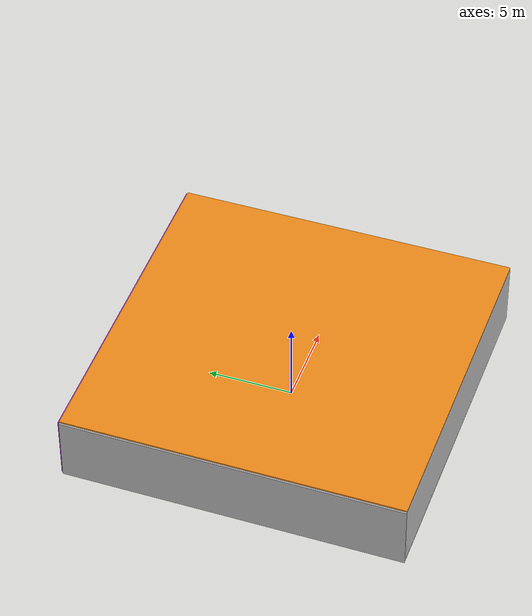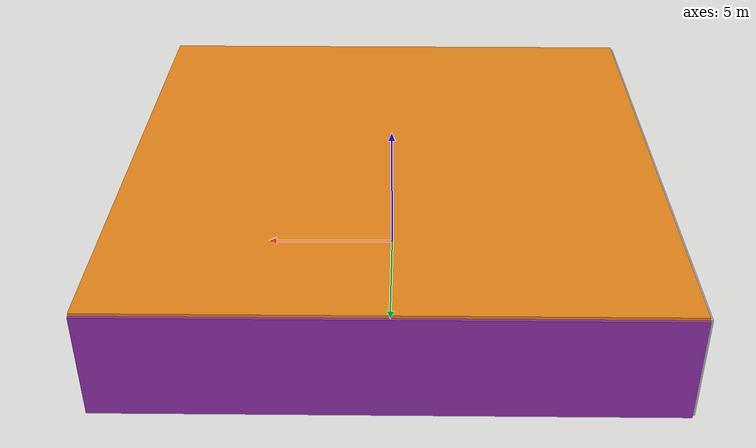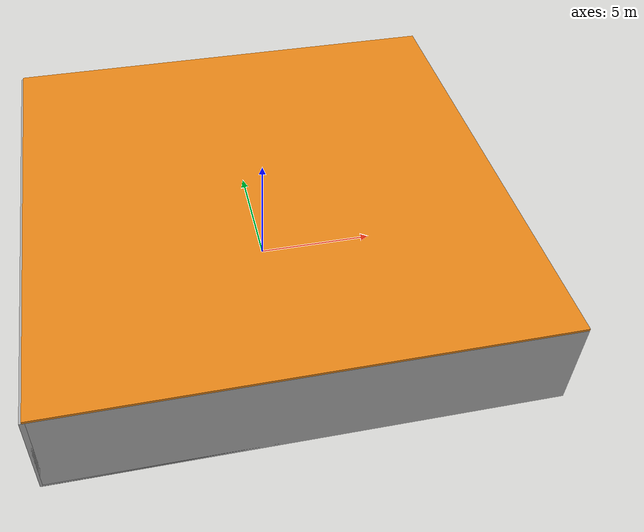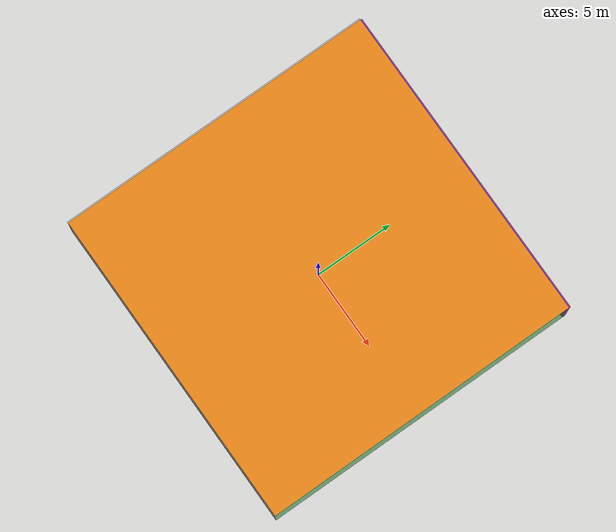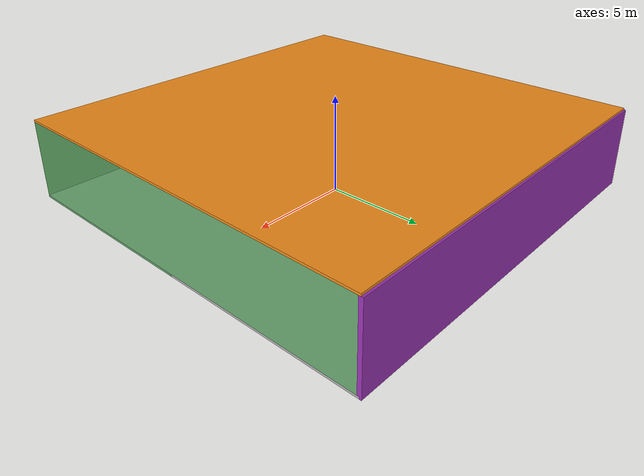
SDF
<sdf version="1.4">
 <world name="default">
  <physics type="ode">
   <max_step_size>0.001</max_step_size>
   <real_time_factor>1</real_time_factor>
   <real_time_update_rate>1000</real_time_update_rate>
   <gravity>0 0 -9.8</gravity>
  </physics>
  <scene><ambient>0.4 0.4 0.4 1</ambient><background>0.7 0.7 0.7 1</background><shadows>1</shadows></scene>
  <model name="Surrounding">
   <static>1</static>
   <link name="Ceiling">
    <collision name="Ceiling_Collision"><geometry><box><size>20 20 0.1</size></box></geometry></collision>
    <visual name="Ceiling_Visual">
     <geometry><box><size>20 20 0.1</size></box></geometry>
     <material>
      <script><uri>file://media/materials/scripts/gazebo.material</uri><name>Gazebo/Orange</name></script>
     </material>
    </visual>
    <pose>0 0 4.05 0 0 0</pose>
   </link>
   <link name="Wall_South">
    <collision name="Wall_South_Collision">
     <geometry><box><size>20 0 4</size></box></geometry>
     <pose>0 0 2 0 -0 0</pose>
    </collision>
    <visual name="Wall_South_Visual">
     <pose>0 0 2 0 -0 0</pose>
     <geometry><box><size>20 0 4</size></box></geometry>
     <material>
      <script><uri>file://media/materials/scripts/gazebo.material</uri><name>Gazebo/LightOn</name></script>
     </material>
    </visual>
    <velocity_decay><linear>0</linear><angular>0</angular></velocity_decay>
    <pose>0 -10 0 0 -0 0</pose>
   </link>
   <link name="Wall_East">
    <collision name="Wall_21_Collision">
     <geometry><box><size>20 0 4</size></box></geometry>
     <pose>0 0 2 0 -0 0</pose>
    </collision>
    <visual name="Wall_21_Visual">
     <pose>0 0 2 0 -0 0</pose>
     <geometry><box><size>20 0 4</size></box></geometry>
     <material>
      <script><uri>file://media/materials/scripts/gazebo.material</uri><name>Gazebo/GreenTransparent</name></script>
     </material>
    </visual>
    <velocity_decay><linear>0</linear><angular>0</angular></velocity_decay>
    <pose>10 0 0 0 -0 1.5708</pose>
   </link>
   <link name="Wall_North">
    <collision name="Wall_22_Collision">
     <geometry><box><size>20 0.2 4</size></box></geometry>
     <pose>0 0 2 0 -0 0</pose>
    </collision>
    <visual name="Wall_22_Visual">
     <pose>0 0 2 0 -0 0</pose>
     <geometry><box><size>20 0.2 4</size></box></geometry>
     <material>
      <script><uri>file://media/materials/scripts/gazebo.material</uri><name>Gazebo/PurpleGlow</name></script>
     </material>
    </visual>
    <velocity_decay><linear>0</linear><angular>0</angular></velocity_decay>
    <pose>0 10 0 0 -0 0</pose>
   </link>
   <link name="Wall_West">
    <collision name="Wall_23_Collision">
     <geometry><box><size>20 0.2 4</size></box></geometry>
     <pose>0 0 2 0 -0 0</pose>
    </collision>
    <visual name="Wall_23_Visual">
     <pose>0 0 2 0 -0 0</pose>
     <geometry><box><size>20 0.2 4</size></box></geometry>
     <material>
      <script><uri>file://media/materials/scripts/gazebo.material</uri><name>Gazebo/JointAnchor</name></script>
     </material>
    </visual>
    <velocity_decay><linear>0</linear><angular>0</angular></velocity_decay>
    <pose>-10 0 0 0 0 -1.5708</pose>
   </link>
   <link name="Ground_link">
    <collision name="collision">
     <pose>0 0 .05 0 -0 0</pose>
     <geometry><box><size>20 20 0.1</size></box></geometry>
    </collision>
    <visual name="visual">
     <pose>0 0 .05 0 -0 0</pose>
     <geometry><box><size>20 20 0.1</size></box></geometry>
     <material>
      <script><uri>file://media/materials/scripts/gazebo.material</uri><name>Gazebo/Pioneer2Body</name></script>
     </material>
    </visual>
   </link>
   <static>1</static>
  </model>
  <spherical_coordinates>
   <surface_model>EARTH_WGS84</surface_model>
   <latitude_deg>0</latitude_deg>
   <longitude_deg>0</longitude_deg>
   <elevation>0</elevation>
   <heading_deg>0</heading_deg>
  </spherical_coordinates>
  <light name="lightball_0" type="diffuse">
   <diffuse>0.8 0.8 0.8 1</diffuse>
   <specular>0.2 0.2 0.2 1</specular>
   <attenuation>
    <range>100</range>
    <constant>0.7</constant>
    <linear>0.01</linear>
    <quadratic>0.001</quadratic>
   </attenuation>
   <direction>-0.5 0.1 -0.9</direction>
   <pose>-6.9133809468 -4.9905610805 1.58254588103 0 0 0</pose>
  </light>
  <light name="lightball_1" type="diffuse">
   <diffuse>0.8 0.8 0.8 1</diffuse>
   <specular>0.2 0.2 0.2 1</specular>
   <attenuation>
    <range>100</range>
    <constant>0.7</constant>
    <linear>0.01</linear>
    <quadratic>0.001</quadratic>
   </attenuation>
   <direction>-0.5 0.1 -0.9</direction>
   <pose>2.52176094526 7.57111679758 3.44630338513 0 0 0</pose>
  </light>
  <light name="lightball_2" type="diffuse">
   <diffuse>0.8 0.8 0.8 1</diffuse>
   <specular>0.2 0.2 0.2 1</specular>
   <attenuation>
    <range>100</range>
    <constant>0.7</constant>
    <linear>0.01</linear>
    <quadratic>0.001</quadratic>
   </attenuation>
   <direction>-0.5 0.1 -0.9</direction>
   <pose>-6.80459452577 -0.304873801495 3.32246097551 0 0 0</pose>
  </light>
  <light name="lightball_3" type="diffuse">
   <diffuse>0.8 0.8 0.8 1</diffuse>
   <specular>0.2 0.2 0.2 1</specular>
   <attenuation>
    <range>100</range>
    <constant>0.7</constant>
    <linear>0.01</linear>
    <quadratic>0.001</quadratic>
   </attenuation>
   <direction>-0.5 0.1 -0.9</direction>
   <pose>-9.68268408879 2.64420951922 1.97315138456 0 0 0</pose>
  </light>
  <light name="lightball_4" type="diffuse">
   <diffuse>0.8 0.8 0.8 1</diffuse>
   <specular>0.2 0.2 0.2 1</specular>
   <attenuation>
    <range>100</range>
    <constant>0.7</constant>
    <linear>0.01</linear>
    <quadratic>0.001</quadratic>
   </attenuation>
   <direction>-0.5 0.1 -0.9</direction>
   <pose>7.59142261083 1.90288799244 2.62017386108 0 0 0</pose>
  </light>
  <light name="lightball_5" type="diffuse">
   <diffuse>0.8 0.8 0.8 1</diffuse>
   <specular>0.2 0.2 0.2 1</specular>
   <attenuation>
    <range>100</range>
    <constant>0.7</constant>
    <linear>0.01</linear>
    <quadratic>0.001</quadratic>
   </attenuation>
   <direction>-0.5 0.1 -0.9</direction>
   <pose>1.89692709071 2.51036507008 2.19629944385 0 0 0</pose>
  </light>
  <light name="lightball_6" type="diffuse">
   <diffuse>0.8 0.8 0.8 1</diffuse>
   <specular>0.2 0.2 0.2 1</specular>
   <attenuation>
    <range>100</range>
    <constant>0.7</constant>
    <linear>0.01</linear>
    <quadratic>0.001</quadratic>
   </attenuation>
   <direction>-0.5 0.1 -0.9</direction>
   <pose>-1.16746848759 -5.55115187488 0.97343840151 0 0 0</pose>
  </light>
  <light name="lightball_7" type="diffuse">
   <diffuse>0.8 0.8 0.8 1</diffuse>
   <specular>0.2 0.2 0.2 1</specular>
   <attenuation>
    <range>100</range>
    <constant>0.7</constant>
    <linear>0.01</linear>
    <quadratic>0.001</quadratic>
   </attenuation>
   <direction>-0.5 0.1 -0.9</direction>
   <pose>-9.2204186031 -8.739580974 1.81809345716 0 0 0</pose>
  </light>
  <light name="lightball_8" type="diffuse">
   <diffuse>0.8 0.8 0.8 1</diffuse>
   <specular>0.2 0.2 0.2 1</specular>
   <attenuation>
    <range>100</range>
    <constant>0.7</constant>
    <linear>0.01</linear>
    <quadratic>0.001</quadratic>
   </attenuation>
   <direction>-0.5 0.1 -0.9</direction>
   <pose>6.13521674637 5.80336315194 2.21116012086 0 0 0</pose>
  </light>
  <light name="lightball_9" type="diffuse">
   <diffuse>0.8 0.8 0.8 1</diffuse>
   <specular>0.2 0.2 0.2 1</specular>
   <attenuation>
    <range>100</range>
    <constant>0.7</constant>
    <linear>0.01</linear>
    <quadratic>0.001</quadratic>
   </attenuation>
   <direction>-0.5 0.1 -0.9</direction>
   <pose>-5.61547930845 4.12627536279 1.25264043513 0 0 0</pose>
  </light>
  <light name="lightball_10" type="diffuse">
   <diffuse>0.8 0.8 0.8 1</diffuse>
   <specular>0.2 0.2 0.2 1</specular>
   <attenuation>
    <range>100</range>
    <constant>0.7</constant>
    <linear>0.01</linear>
    <quadratic>0.001</quadratic>
   </attenuation>
   <direction>-0.5 0.1 -0.9</direction>
   <pose>-4.0140695798 -3.14512297594 1.19957359413 0 0 0</pose>
  </light>
  <include>
   <uri>model://robocup_3Dsim_goal</uri>
   <pose>-7.7727551913 4.22484507237 0 0 0 1.33879294425</pose>
  </include>
  <include>
   <uri>model://robocup_3Dsim_goal</uri>
   <pose>-1.5631478314 -3.9161483412 0 0 0 0.311571333374</pose>
  </include>
  <include><uri>model://table</uri><pose>2.14069052605 6.86757446983 0 0 0 3.04843738466</pose></include>
  <include><uri>model://cabinet</uri><pose>5.05736892393 -5.20265459068 0 0 0 2.03945390812</pose></include>
  <include>
   <uri>model://textured_shapes</uri>
   <pose>4.7867294568 -0.87298418695 0 0 0 0.0579271799241</pose>
  </include>
 </world>
</sdf>

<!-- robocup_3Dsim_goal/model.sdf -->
<sdf version="1.5">
  <model name="robocup_3d_goal">
    <static>true</static>
    <link name="left_post">
      <pose>0 1.05 0.45 0 0 0</pose>
      <collision name="collision">
        <geometry>
          <cylinder>
            <radius>0.05</radius>
            <length>0.9</length>
          </cylinder>
        </geometry>
      </collision>
      <visual name="visual">
        <geometry>
          <cylinder>
            <radius>0.05</radius>
            <length>0.9</length>
          </cylinder>
        </geometry>
        <material>
          <script>
            <uri>file://media/materials/scripts/gazebo.material</uri>
            <name>Gazebo/ZincYellow</name>
          </script>
        </material>
      </visual>
    </link>
    <link name="left_support_horiz_lower">
      <pose>0.30 1.05 0.01 0 0 0</pose>
      <collision name="collision">
        <geometry>
          <box>
            <size>0.50 0.02 0.02</size>
          </box>
        </geometry>
      </collision>
      <visual name="visual">
        <geometry>
          <box>
            <size>0.50 0.02 0.02</size>
          </box>
        </geometry>
        <material>
          <script>
            <uri>file://media/materials/scripts/gazebo.material</uri>
            <name>Gazebo/White</name>
          </script>
        </material>
      </visual>
    </link>
    <link name="left_support_horiz_upper">
      <pose>0.30 1.05 0.79 0 0 0</pose>
      <collision name="collision">
        <geometry>
          <box>
            <size>0.50 0.02 0.02</size>
          </box>
        </geometry>
      </collision>
      <visual name="visual">
        <geometry>
          <box>
            <size>0.50 0.02 0.02</size>
          </box>
        </geometry>
        <material>
          <script>
            <uri>file://media/materials/scripts/gazebo.material</uri>
            <name>Gazebo/White</name>
          </script>
        </material>
      </visual>
    </link>
    <link name="left_support_vertical">
      <pose>0.56 1.05 0.4 0 1.5708 0</pose>
      <collision name="collision">
        <geometry>
          <box>
            <size>0.80 0.02 0.02</size>
          </box>
        </geometry>
      </collision>
      <visual name="visual">
        <geometry>
          <box>
            <size>0.80 0.02 0.02</size>
          </box>
        </geometry>
        <material>
          <script>
            <uri>file://media/materials/scripts/gazebo.material</uri>
            <name>Gazebo/White</name>
          </script>
        </material>
      </visual>
    </link>
    <link name="right_support_horiz_lower">
      <pose>0.30 -1.05 0.01 0 0 0</pose>
      <collision name="collision">
        <geometry>
          <box>
            <size>0.50 0.02 0.02</size>
          </box>
        </geometry>
      </collision>
      <visual name="visual">
        <geometry>
          <box>
            <size>0.50 0.02 0.02</size>
          </box>
        </geometry>
        <material>
          <script>
            <uri>file://media/materials/scripts/gazebo.material</uri>
            <name>Gazebo/White</name>
          </script>
        </material>
      </visual>
    </link>
    <link name="right_support_horiz_upper">
      <pose>0.30 -1.05 0.79 0 0 0</pose>
      <collision name="collision">
        <geometry>
          <box>
            <size>0.50 0.02 0.02</size>
          </box>
        </geometry>
      </collision>
      <visual name="visual">
        <geometry>
          <box>
            <size>0.50 0.02 0.02</size>
          </box>
        </geometry>
        <material>
          <script>
            <uri>file://media/materials/scripts/gazebo.material</uri>
            <name>Gazebo/White</name>
          </script>
        </material>
      </visual>
    </link>
    <link name="right_support_vertical">
      <pose>0.56 -1.05 0.4 0 1.5708 0</pose>
      <collision name="collision">
        <geometry>
          <box>
            <size>0.80 0.02 0.02</size>
          </box>
        </geometry>
      </collision>
      <visual name="visual">
        <geometry>
          <box>
            <size>0.80 0.02 0.02</size>
          </box>
        </geometry>
        <material>
          <script>
            <uri>file://media/materials/scripts/gazebo.material</uri>
            <name>Gazebo/White</name>
          </script>
        </material>
      </visual>
    </link>
    <link name="center_support_horiz_lower">
      <pose>0.56 0 0.01 0 1.5708 0</pose>
      <collision name="collision">
        <geometry>
          <box>
            <size>0.02 2.08 0.02</size>
          </box>
        </geometry>
      </collision>
      <visual name="visual">
        <geometry>
          <box>
            <size>0.02 2.08 0.02</size>
          </box>
        </geometry>
        <material>
          <script>
            <uri>file://media/materials/scripts/gazebo.material</uri>
            <name>Gazebo/White</name>
          </script>
        </material>
      </visual>
    </link>
    <link name="center_support_horiz_upper">
      <pose>0.56 0 0.79 0 1.5708 0</pose>
      <collision name="collision">
        <geometry>
          <box>
            <size>0.02 2.08 0.02</size>
          </box>
        </geometry>
      </collision>
      <visual name="visual">
        <geometry>
          <box>
            <size>0.02 2.08 0.02</size>
          </box>
        </geometry>
        <material>
          <script>
            <uri>file://media/materials/scripts/gazebo.material</uri>
            <name>Gazebo/White</name>
          </script>
        </material>
      </visual>
    </link>
    <link name="right_post">
      <pose>0 -1.05 0.45 0 0 0</pose>
      <collision name="collision">
        <geometry>
          <cylinder>
            <radius>0.05</radius>
            <length>0.9</length>
          </cylinder>
        </geometry>
      </collision>
      <visual name="visual">
        <geometry>
          <cylinder>
            <radius>0.05</radius>
            <length>0.9</length>
          </cylinder>
        </geometry>
        <material>
          <script>
            <uri>file://media/materials/scripts/gazebo.material</uri>
            <name>Gazebo/ZincYellow</name>
          </script>
        </material>
      </visual>
    </link>
    <link name="crossbar">
      <pose>0 0 0.85 1.57 1.57 0</pose>
      <collision name="collision">
        <geometry>
          <cylinder>
            <radius>0.05</radius>
            <length>2.0</length>
          </cylinder>
        </geometry>
      </collision>
      <visual name="visual">
        <geometry>
          <cylinder>
            <radius>0.05</radius>
            <length>2.0</length>
          </cylinder>
        </geometry>
        <material>
          <script>
            <uri>file://media/materials/scripts/gazebo.material</uri>
            <name>Gazebo/ZincYellow</name>
          </script>
        </material>
      </visual>
    </link>
    <link name="center_net">
      <pose>0.56 0 0.40 0 0 0</pose>
      <collision name="collision">
        <geometry>
          <box>
            <size>0.01 2.1 0.80</size>
          </box>
        </geometry>
      </collision>
      <visual name="visual">
        <geometry>
          <box>
            <size>0.01 2.1 0.80</size>
          </box>
        </geometry>
        <material>
          <script>
            <uri>model://../model_source/models/robocup09_spl_field/materials/scripts/</uri>
            <uri>model://../model_source/models/robocup09_spl_field/materials/textures/</uri>
            <name>RoboCup/Net</name>
          </script>
        </material>
      </visual>
    </link>
    <link name="left_net">
      <pose>0.30 1.05 0.40 0 0 0</pose>
      <collision name="collision">
        <geometry>
          <box>
            <size>0.50 0.01 0.76</size>
          </box>
        </geometry>
      </collision>
      <visual name="visual">
        <geometry>
          <box>
            <size>0.50 0.01 0.76</size>
          </box>
        </geometry>
        <material>
          <script>
            <uri>model://../model_source/models/robocup09_spl_field/materials/scripts/</uri>
            <uri>model://../model_source/models/robocup09_spl_field/materials/textures/</uri>
            <name>RoboCup/Net</name>
          </script>
        </material>
      </visual>
    </link>
    <link name="right_net">
      <pose>0.30 -1.05 0.40 0 0 0</pose>
      <collision name="collision">
        <geometry>
          <box>
            <size>0.50 0.01 0.76</size>
          </box>
        </geometry>
      </collision>
      <visual name="visual">
        <geometry>
          <box>
            <size>0.50 0.01 0.76</size>
          </box>
        </geometry>
        <material>
          <script>
            <uri>model://../model_source/models/robocup09_spl_field/materials/scripts/</uri>
            <uri>model://../model_source/models/robocup09_spl_field/materials/textures/</uri>
            <name>RoboCup/Net</name>
          </script>
        </material>
      </visual>
    </link>
  </model>
</sdf>

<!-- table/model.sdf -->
<sdf version="1.5">
  <model name="table">
    <static>true</static>
    <link name="link">
      <collision name="surface">
        <pose>0 0 1.0 0 0 0</pose>
        <geometry>
          <box>
            <size>1.5 0.8 0.03</size>
          </box>
        </geometry>
        <surface>
          <friction>
            <ode>
              <mu>0.6</mu>
              <mu2>0.6</mu2>
            </ode>
          </friction>
        </surface>
      </collision>
      <visual name="visual1">
        <pose>0 0 1.0 0 0 0</pose>
        <geometry>
          <box>
            <size>1.5 0.8 0.03</size>
          </box>
        </geometry>
        <material>
          <script>
            <uri>model://media/materials/scripts/gazebo.material</uri>
            <name>Gazebo/Wood</name>
          </script>
        </material>
      </visual>
      <collision name="front_left_leg">
        <pose>0.68 0.38 0.5 0 0 0</pose>
        <geometry>
          <cylinder>
            <radius>0.02</radius>
            <length>1.0</length>
          </cylinder>
        </geometry>
      </collision>
      <visual name="front_left_leg">
        <pose>0.68 0.38 0.5 0 0 0</pose>
        <geometry>
          <cylinder>
            <radius>0.02</radius>
            <length>1.0</length>
          </cylinder>
        </geometry>
        <material>
          <script>
            <uri>model://media/materials/scripts/gazebo.material</uri>
            <name>Gazebo/Grey</name>
          </script>
        </material>
      </visual>
      <collision name="front_right_leg">
        <pose>0.68 -0.38 0.5 0 0 0</pose>
        <geometry>
          <cylinder>
            <radius>0.02</radius>
            <length>1.0</length>
          </cylinder>
        </geometry>
      </collision>
      <visual name="front_right_leg">
        <pose>0.68 -0.38 0.5 0 0 0</pose>
        <geometry>
          <cylinder>
            <radius>0.02</radius>
            <length>1.0</length>
          </cylinder>
        </geometry>
        <material>
          <script>
            <uri>model://media/materials/scripts/gazebo.material</uri>
            <name>Gazebo/Grey</name>
          </script>
        </material>
      </visual>
      <collision name="back_right_leg">
        <pose>-0.68 -0.38 0.5 0 0 0</pose>
        <geometry>
          <cylinder>
            <radius>0.02</radius>
            <length>1.0</length>
          </cylinder>
        </geometry>
      </collision>
      <visual name="back_right_leg">
        <pose>-0.68 -0.38 0.5 0 0 0</pose>
        <geometry>
          <cylinder>
            <radius>0.02</radius>
            <length>1.0</length>
          </cylinder>
        </geometry>
        <material>
          <script>
            <uri>model://media/materials/scripts/gazebo.material</uri>
            <name>Gazebo/Grey</name>
          </script>
        </material>
      </visual>
      <collision name="back_left_leg">
        <pose>-0.68 0.38 0.5 0 0 0</pose>
        <geometry>
          <cylinder>
            <radius>0.02</radius>
            <length>1.0</length>
          </cylinder>
        </geometry>
      </collision>
      <visual name="back_left_leg">
        <pose>-0.68 0.38 0.5 0 0 0</pose>
        <geometry>
          <cylinder>
            <radius>0.02</radius>
            <length>1.0</length>
          </cylinder>
        </geometry>
        <material>
          <script>
            <uri>model://media/materials/scripts/gazebo.material</uri>
            <name>Gazebo/Grey</name>
          </script>
        </material>
      </visual>
    </link>
  </model>
</sdf>

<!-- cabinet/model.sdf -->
<sdf version="1.5">
  <model name="cabinet">
    <static>true</static>
    <link name="cabinet_bottom_plate">
      <inertial>
        <pose>0 0 -1 0 0 0</pose>
        <inertia>
          <ixx>2.050000</ixx>
          <ixy>0</ixy>
          <ixz>0</ixz>
          <iyy>2.050000</iyy>
          <iyz>0</iyz>
          <izz>2.050000</izz>
        </inertia>
        <mass>25.000000</mass>
      </inertial>
      <collision name="cabinet_bottom_plate_geom">
        <pose>0 0 0.010000 0 0 0</pose>
        <geometry>
          <box>
            <size>0.450000 0.450000 0.020000</size>
          </box>
        </geometry>
      </collision>
      <visual name="cabinet_bottom_plate_geom_visual">
        <pose>0 0 0.010000 0 0 0</pose>
        <geometry>
          <box>
            <size>0.450000 0.450000 0.020000</size>
          </box>
        </geometry>
        <material>
          <script>
            <uri>model://media/materials/scripts/gazebo.material</uri>
            <name>Gazebo/Wood</name>
          </script>
        </material>
      </visual>
      <collision name="cabinet_bottom_plate_geom_cabinet_back_plate">
        <pose>0.235000 0 0.510000 0 0 0</pose>
        <geometry>
          <box>
            <size>0.020000 0.450000 1.020000</size>
          </box>
        </geometry>
      </collision>
      <visual name="cabinet_bottom_plate_geom_cabinet_back_plate_visual">
        <pose>0.235000 0 0.510000 0 0 0</pose>
        <geometry>
          <box>
            <size>0.020000 0.450000 1.020000</size>
          </box>
        </geometry>
        <material>
          <script>
            <uri>model://media/materials/scripts/gazebo.material</uri>
            <name>Gazebo/Wood</name>
          </script>
        </material>
      </visual>
      <collision name="cabinet_bottom_plate_geom_cabinet_left_plate">
        <pose>0 0.235000 0.510000 0 0 0</pose>
        <geometry>
          <box>
            <size>0.450000 0.020000 1.020000</size>
          </box>
        </geometry>
      </collision>
      <visual name="cabinet_bottom_plate_geom_cabinet_left_plate_visual">
        <pose>0 0.235000 0.510000 0 0 0</pose>
        <geometry>
          <box>
            <size>0.450000 0.020000 1.020000</size>
          </box>
        </geometry>
        <material>
          <script>
            <uri>model://media/materials/scripts/gazebo.material</uri>
            <name>Gazebo/Wood</name>
          </script>
        </material>
      </visual>
      <collision name="cabinet_bottom_plate_geom_cabinet_middle_plate">
        <pose>0 0 0.510000 0 0 0</pose>
        <geometry>
          <box>
            <size>0.450000 0.450000 0.020000</size>
          </box>
        </geometry>
      </collision>
      <visual name="cabinet_bottom_plate_geom_cabinet_middle_plate_visual">
        <pose>0 0 0.510000 0 0 0</pose>
        <geometry>
          <box>
            <size>0.450000 0.450000 0.020000</size>
          </box>
        </geometry>
        <material>
          <script>
            <uri>model://media/materials/scripts/gazebo.material</uri>
            <name>Gazebo/Wood</name>
          </script>
        </material>
      </visual>
      <collision name="cabinet_bottom_plate_geom_cabinet_right_plate">
        <pose>0 -0.235000 0.510000 0 0 0</pose>
        <geometry>
          <box>
            <size>0.450000 0.020000 1.020000</size>
          </box>
        </geometry>
      </collision>
      <visual name="cabinet_bottom_plate_geom_cabinet_right_plate_visual">
        <pose>0 -0.235000 0.510000 0 0 0</pose>
        <geometry>
          <box>
            <size>0.450000 0.020000 1.020000</size>
          </box>
        </geometry>
        <material>
          <script>
            <uri>model://media/materials/scripts/gazebo.material</uri>
            <name>Gazebo/Wood</name>
          </script>
        </material>
      </visual>
      <collision name="cabinet_bottom_plate_geom_cabinet_top_plate">
        <pose>0 0 1.010000 0 0 0</pose>
        <geometry>
          <box>
            <size>0.450000 0.450000 0.020000</size>
          </box>
        </geometry>
      </collision>
      <visual name="cabinet_bottom_plate_geom_cabinet_top_plate_visual">
        <pose>0 0 1.010000 0 0 0</pose>
        <geometry>
          <box>
            <size>0.450000 0.450000 0.020000</size>
          </box>
        </geometry>
        <material>
          <script>
            <uri>model://media/materials/scripts/gazebo.material</uri>
            <name>Gazebo/Wood</name>
          </script>
        </material>
      </visual>
    </link>
  </model>
</sdf>

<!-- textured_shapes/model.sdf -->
<sdf version="1.6">
  <model name="textured_shapes">
    <pose>0 0 0.5 0 0 0</pose>
    <link name="box">
      <pose>0 -1.5 0 0 0 0</pose>
      <collision name="collision">
        <geometry>
          <box>
            <size>1 1 1</size>
          </box>
        </geometry>
      </collision>
      <visual name="visual">
        <geometry>
          <box>
            <size>1 1 1</size>
          </box>
        </geometry>
        <material>
          <script>
            <uri>model://../model_source/models/textured_shapes/materials/scripts</uri>
            <uri>model://../model_source/models/textured_shapes/materials/textures</uri>
            <name>TexturedShape/Squares</name>
          </script>
        </material>
      </visual>
    </link>
    <link name="sphere">
      <collision name="collision">
        <geometry>
          <sphere>
            <radius>0.5</radius>
          </sphere>
        </geometry>
      </collision>
      <visual name="visual">
        <geometry>
          <sphere>
            <radius>0.5</radius>
          </sphere>
        </geometry>
        <material>
          <script>
            <uri>model://../model_source/models/textured_shapes/materials/scripts</uri>
            <uri>model://../model_source/models/textured_shapes/materials/textures</uri>
            <name>TexturedShape/Squares</name>
          </script>
        </material>
      </visual>
    </link>
    <link name="cylinder">
      <pose>0 1.5 0 0 0 0</pose>
      <collision name="collision">
        <geometry>
          <cylinder>
            <radius>0.5</radius>
            <length>1</length>
          </cylinder>
        </geometry>
      </collision>
      <visual name="visual">
        <geometry>
          <cylinder>
            <radius>0.5</radius>
            <length>1</length>
          </cylinder>
        </geometry>
        <material>
          <script>
            <uri>model://../model_source/models/textured_shapes/materials/scripts</uri>
            <uri>model://../model_source/models/textured_shapes/materials/textures</uri>
            <name>TexturedShape/Squares</name>
          </script>
        </material>
      </visual>
    </link>
  </model>
</sdf>
